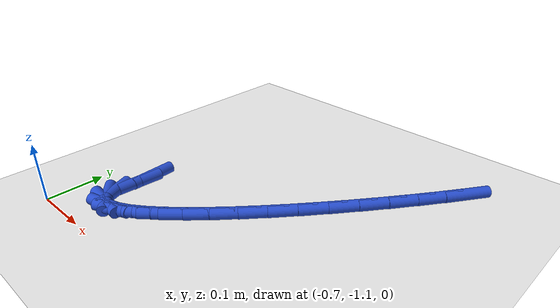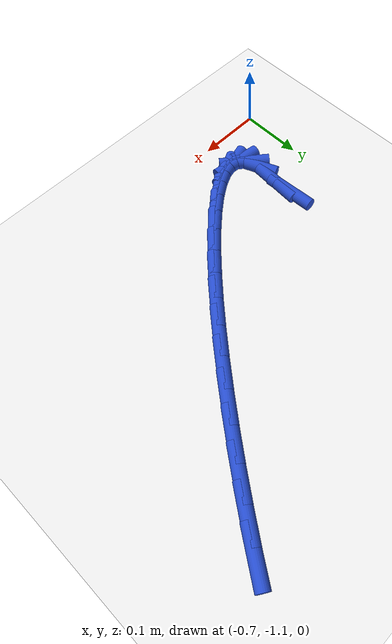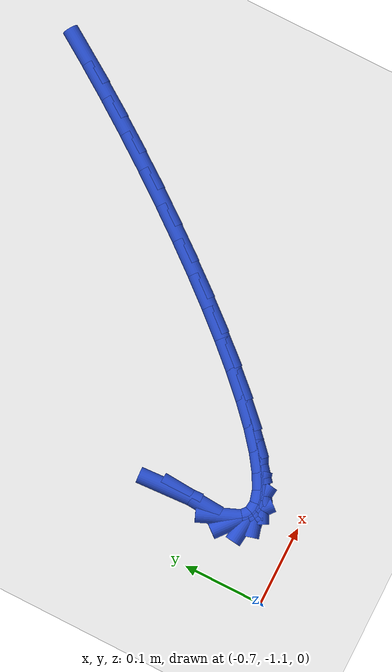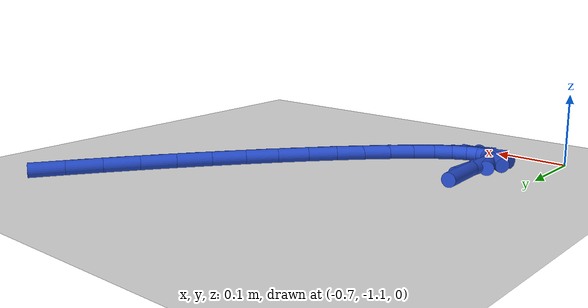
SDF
<sdf version="1.6">
 <world name="default">
  <model name="ground_plane">
   <static>1</static>
   <link name="link">
    <collision name="collision">
     <geometry><plane><normal>0 0 1</normal><size>100 100</size></plane></geometry>
     <surface><friction><ode><mu>100</mu><mu2>50</mu2></ode></friction></surface>
    </collision>
    <visual name="visual">
     <cast_shadows>0</cast_shadows>
     <geometry><plane><normal>0 0 1</normal><size>100 100</size></plane></geometry>
     <material>
      <script><uri>file://media/materials/scripts/gazebo.material</uri><name>Gazebo/WhiteGlow</name></script>
     </material>
    </visual>
   </link>
  </model>
  <model name="line">
   <link name="link_209">
    <pose>-0.6264537953952507 -0.9416775551849859 0.01 0 1.57 -1.514291059146932</pose>
    <collision name="collision">
     <geometry><cylinder><radius>0.01</radius><length>0.08</length></cylinder></geometry>
    </collision>
    <visual name="visual">
     <material>
      <script><name>Gazebo/Blue</name><uri>file://media/materials/scripts/gazebo.material</uri></script>
     </material>
     <geometry><cylinder><radius>0.01</radius><length>0.08</length></cylinder></geometry>
    </visual>
   </link>
   <link name="link_210">
    <pose>-0.6249064088551388 -0.969033223046355 0.01 0 1.57 1.5036138427611976</pose>
    <collision name="collision">
     <geometry><cylinder><radius>0.01</radius><length>0.08</length></cylinder></geometry>
    </collision>
    <visual name="visual">
     <material>
      <script><name>Gazebo/Blue</name><uri>file://media/materials/scripts/gazebo.material</uri></script>
     </material>
     <geometry><cylinder><radius>0.01</radius><length>0.08</length></cylinder></geometry>
    </visual>
   </link>
   <link name="link_212">
    <pose>-0.6248280081604105 -1.0197320340765688 0.01 0 1.57 -1.1820400361150525</pose>
    <collision name="collision">
     <geometry><cylinder><radius>0.01</radius><length>0.08</length></cylinder></geometry>
    </collision>
    <visual name="visual">
     <material>
      <script><name>Gazebo/Blue</name><uri>file://media/materials/scripts/gazebo.material</uri></script>
     </material>
     <geometry><cylinder><radius>0.01</radius><length>0.08</length></cylinder></geometry>
    </visual>
   </link>
   <link name="link_213">
    <pose>-0.6188612771201408 -1.0342991844009557 0.01 0 1.57 -0.6860050146342404</pose>
    <collision name="collision">
     <geometry><cylinder><radius>0.01</radius><length>0.08</length></cylinder></geometry>
    </collision>
    <visual name="visual">
     <material>
      <script><name>Gazebo/Blue</name><uri>file://media/materials/scripts/gazebo.material</uri></script>
     </material>
     <geometry><cylinder><radius>0.01</radius><length>0.08</length></cylinder></geometry>
    </visual>
   </link>
   <link name="link_214">
    <pose>-0.6092573564463637 -1.042161355824455 0.01 0 1.57 -0.12280957310036279</pose>
    <collision name="collision">
     <geometry><cylinder><radius>0.01</radius><length>0.08</length></cylinder></geometry>
    </collision>
    <visual name="visual">
     <material>
      <script><name>Gazebo/Blue</name><uri>file://media/materials/scripts/gazebo.material</uri></script>
     </material>
     <geometry><cylinder><radius>0.01</radius><length>0.08</length></cylinder></geometry>
    </visual>
   </link>
   <link name="link_215">
    <pose>-0.596317056979568 -1.0437585864760062 0.01 0 1.57 0.2586987016609398</pose>
    <collision name="collision">
     <geometry><cylinder><radius>0.01</radius><length>0.08</length></cylinder></geometry>
    </collision>
    <visual name="visual">
     <material>
      <script><name>Gazebo/Blue</name><uri>file://media/materials/scripts/gazebo.material</uri></script>
     </material>
     <geometry><cylinder><radius>0.01</radius><length>0.08</length></cylinder></geometry>
    </visual>
   </link>
   <link name="link_216">
    <pose>-0.580341189560243 -1.0395309144845484 0.01 0 1.57 0.4745850225926287</pose>
    <collision name="collision">
     <geometry><cylinder><radius>0.01</radius><length>0.08</length></cylinder></geometry>
    </collision>
    <visual name="visual">
     <material>
      <script><name>Gazebo/Blue</name><uri>file://media/materials/scripts/gazebo.material</uri></script>
     </material>
     <geometry><cylinder><radius>0.01</radius><length>0.08</length></cylinder></geometry>
    </visual>
   </link>
   <link name="link_217">
    <pose>-0.561630565028877 -1.0299183779790195 0.01 0 1.57 0.602944445607359</pose>
    <collision name="collision">
     <geometry><cylinder><radius>0.01</radius><length>0.08</length></cylinder></geometry>
    </collision>
    <visual name="visual">
     <material>
      <script><name>Gazebo/Blue</name><uri>file://media/materials/scripts/gazebo.material</uri></script>
     </material>
     <geometry><cylinder><radius>0.01</radius><length>0.08</length></cylinder></geometry>
    </visual>
   </link>
   <link name="link_218">
    <pose>-0.5404859942259591 -1.0153610150883596 0.01 0 1.57 0.6861605221514265</pose>
    <collision name="collision">
     <geometry><cylinder><radius>0.01</radius><length>0.08</length></cylinder></geometry>
    </collision>
    <visual name="visual">
     <material>
      <script><name>Gazebo/Blue</name><uri>file://media/materials/scripts/gazebo.material</uri></script>
     </material>
     <geometry><cylinder><radius>0.01</radius><length>0.08</length></cylinder></geometry>
    </visual>
   </link>
   <link name="link_219">
    <pose>-0.5172082879919782 -0.9962988639415072 0.01 0 1.57 0.7443090375218686</pose>
    <collision name="collision">
     <geometry><cylinder><radius>0.01</radius><length>0.08</length></cylinder></geometry>
    </collision>
    <visual name="visual">
     <material>
      <script><name>Gazebo/Blue</name><uri>file://media/materials/scripts/gazebo.material</uri></script>
     </material>
     <geometry><cylinder><radius>0.01</radius><length>0.08</length></cylinder></geometry>
    </visual>
   </link>
   <link name="link_220">
    <pose>-0.4920982571674229 -0.9731719626674009 0.01 0 1.57 0.7874596361834763</pose>
    <collision name="collision">
     <geometry><cylinder><radius>0.01</radius><length>0.08</length></cylinder></geometry>
    </collision>
    <visual name="visual">
     <material>
      <script><name>Gazebo/Blue</name><uri>file://media/materials/scripts/gazebo.material</uri></script>
     </material>
     <geometry><cylinder><radius>0.01</radius><length>0.08</length></cylinder></geometry>
    </visual>
   </link>
   <link name="link_221">
    <pose>-0.46545671259278226 -0.9464203493949799 0.01 0 1.57 0.8210877590867516</pose>
    <collision name="collision">
     <geometry><cylinder><radius>0.01</radius><length>0.08</length></cylinder></geometry>
    </collision>
    <visual name="visual">
     <material>
      <script><name>Gazebo/Blue</name><uri>file://media/materials/scripts/gazebo.material</uri></script>
     </material>
     <geometry><cylinder><radius>0.01</radius><length>0.08</length></cylinder></geometry>
    </visual>
   </link>
   <link name="link_222">
    <pose>-0.4375844651085452 -0.9164840622531832 0.01 0 1.57 0.8484016900908482</pose>
    <collision name="collision">
     <geometry><cylinder><radius>0.01</radius><length>0.08</length></cylinder></geometry>
    </collision>
    <visual name="visual">
     <material>
      <script><name>Gazebo/Blue</name><uri>file://media/materials/scripts/gazebo.material</uri></script>
     </material>
     <geometry><cylinder><radius>0.01</radius><length>0.08</length></cylinder></geometry>
    </visual>
   </link>
   <link name="link_223">
    <pose>-0.4087823255552005 -0.8838031393709496 0.01 0 1.57 0.8714099035575513</pose>
    <collision name="collision">
     <geometry><cylinder><radius>0.01</radius><length>0.08</length></cylinder></geometry>
    </collision>
    <visual name="visual">
     <material>
      <script><name>Gazebo/Blue</name><uri>file://media/materials/scripts/gazebo.material</uri></script>
     </material>
     <geometry><cylinder><radius>0.01</radius><length>0.08</length></cylinder></geometry>
    </visual>
   </link>
   <link name="link_224">
    <pose>-0.37935110477323697 -0.8488176188772181 0.01 0 1.57 0.8914487915535882</pose>
    <collision name="collision">
     <geometry><cylinder><radius>0.01</radius><length>0.08</length></cylinder></geometry>
    </collision>
    <visual name="visual">
     <material>
      <script><name>Gazebo/Blue</name><uri>file://media/materials/scripts/gazebo.material</uri></script>
     </material>
     <geometry><cylinder><radius>0.01</radius><length>0.08</length></cylinder></geometry>
    </visual>
   </link>
   <link name="link_225">
    <pose>-0.34959161360314356 -0.8119675389009275 0.01 0 1.57 0.9094631888199805</pose>
    <collision name="collision">
     <geometry><cylinder><radius>0.01</radius><length>0.08</length></cylinder></geometry>
    </collision>
    <visual name="visual">
     <material>
      <script><name>Gazebo/Blue</name><uri>file://media/materials/scripts/gazebo.material</uri></script>
     </material>
     <geometry><cylinder><radius>0.01</radius><length>0.08</length></cylinder></geometry>
    </visual>
   </link>
   <link name="link_226">
    <pose>-0.319804662885409 -0.7736929375710169 0.01 0 1.57 0.9261666767942701</pose>
    <collision name="collision">
     <geometry><cylinder><radius>0.01</radius><length>0.08</length></cylinder></geometry>
    </collision>
    <visual name="visual">
     <material>
      <script><name>Gazebo/Blue</name><uri>file://media/materials/scripts/gazebo.material</uri></script>
     </material>
     <geometry><cylinder><radius>0.01</radius><length>0.08</length></cylinder></geometry>
    </visual>
   </link>
   <link name="link_227">
    <pose>-0.29029106346052225 -0.7344338530164248 0.01 0 1.57 0.9421411121430141</pose>
    <collision name="collision">
     <geometry><cylinder><radius>0.01</radius><length>0.08</length></cylinder></geometry>
    </collision>
    <visual name="visual">
     <material>
      <script><name>Gazebo/Blue</name><uri>file://media/materials/scripts/gazebo.material</uri></script>
     </material>
     <geometry><cylinder><radius>0.01</radius><length>0.08</length></cylinder></geometry>
    </visual>
   </link>
   <link name="link_228">
    <pose>-0.2613516261689722 -0.6946303233660908 0.01 0 1.57 0.9579057636286293</pose>
    <collision name="collision">
     <geometry><cylinder><radius>0.01</radius><length>0.08</length></cylinder></geometry>
    </collision>
    <visual name="visual">
     <material>
      <script><name>Gazebo/Blue</name><uri>file://media/materials/scripts/gazebo.material</uri></script>
     </material>
     <geometry><cylinder><radius>0.01</radius><length>0.08</length></cylinder></geometry>
    </visual>
   </link>
   <link name="link_229">
    <pose>-0.23328716185124757 -0.6547223867489534 0.01 0 1.57 0.9739737718163345</pose>
    <collision name="collision">
     <geometry><cylinder><radius>0.01</radius><length>0.08</length></cylinder></geometry>
    </collision>
    <visual name="visual">
     <material>
      <script><name>Gazebo/Blue</name><uri>file://media/materials/scripts/gazebo.material</uri></script>
     </material>
     <geometry><cylinder><radius>0.01</radius><length>0.08</length></cylinder></geometry>
    </visual>
   </link>
   <link name="link_230">
    <pose>-0.2063984813478374 -0.6151500812939515 0.01 0 1.57 0.9909089787961401</pose>
    <collision name="collision">
     <geometry><cylinder><radius>0.01</radius><length>0.08</length></cylinder></geometry>
    </collision>
    <visual name="visual">
     <material>
      <script><name>Gazebo/Blue</name><uri>file://media/materials/scripts/gazebo.material</uri></script>
     </material>
     <geometry><cylinder><radius>0.01</radius><length>0.08</length></cylinder></geometry>
    </visual>
   </link>
  </model>
 </world>
</sdf>
